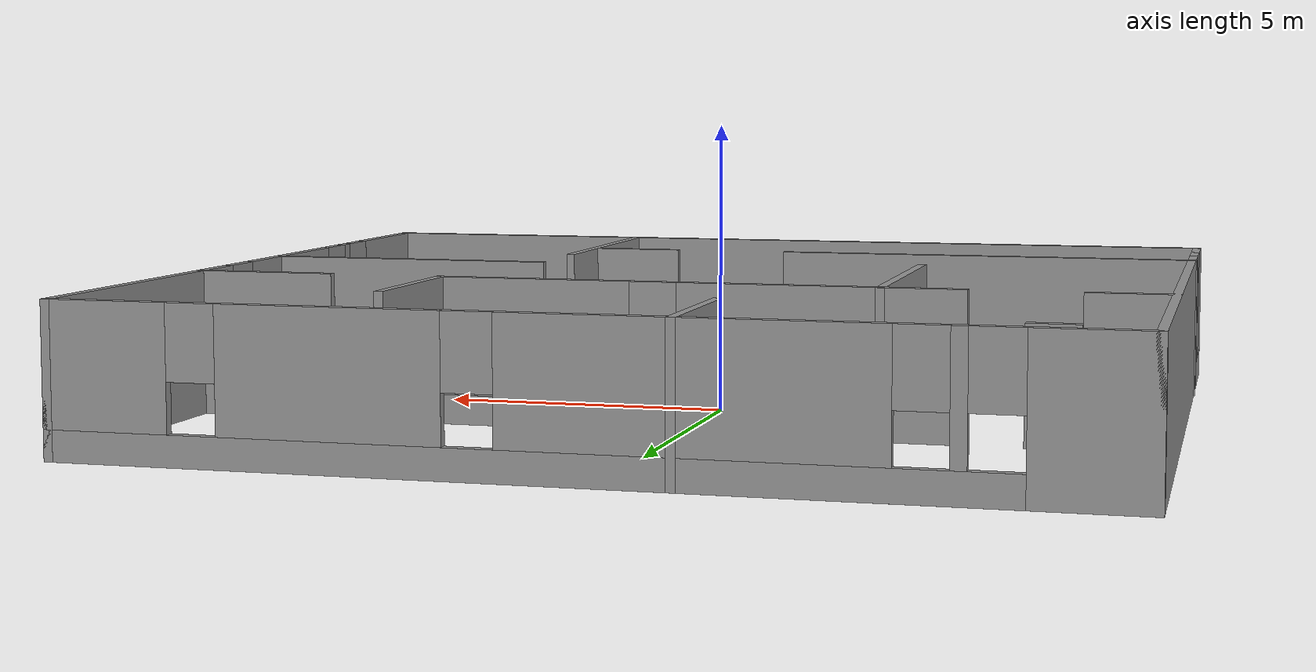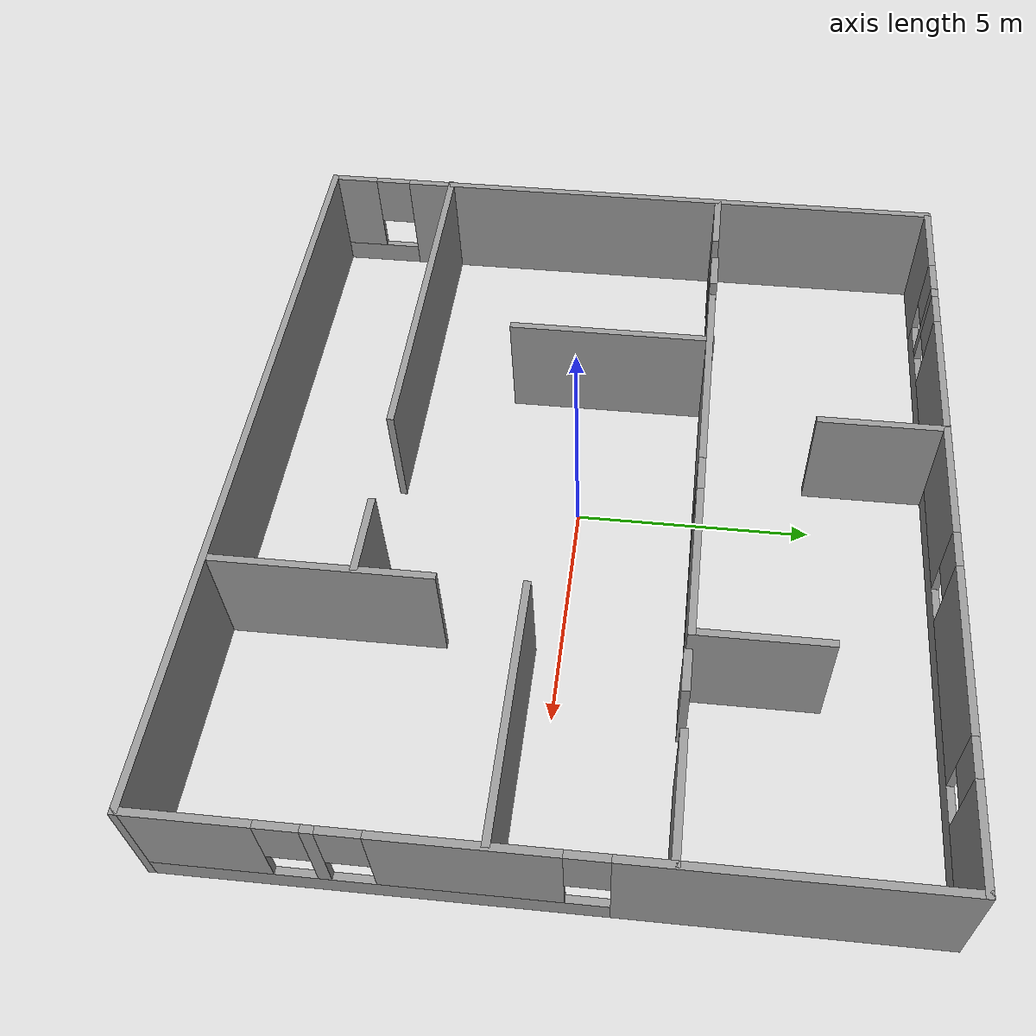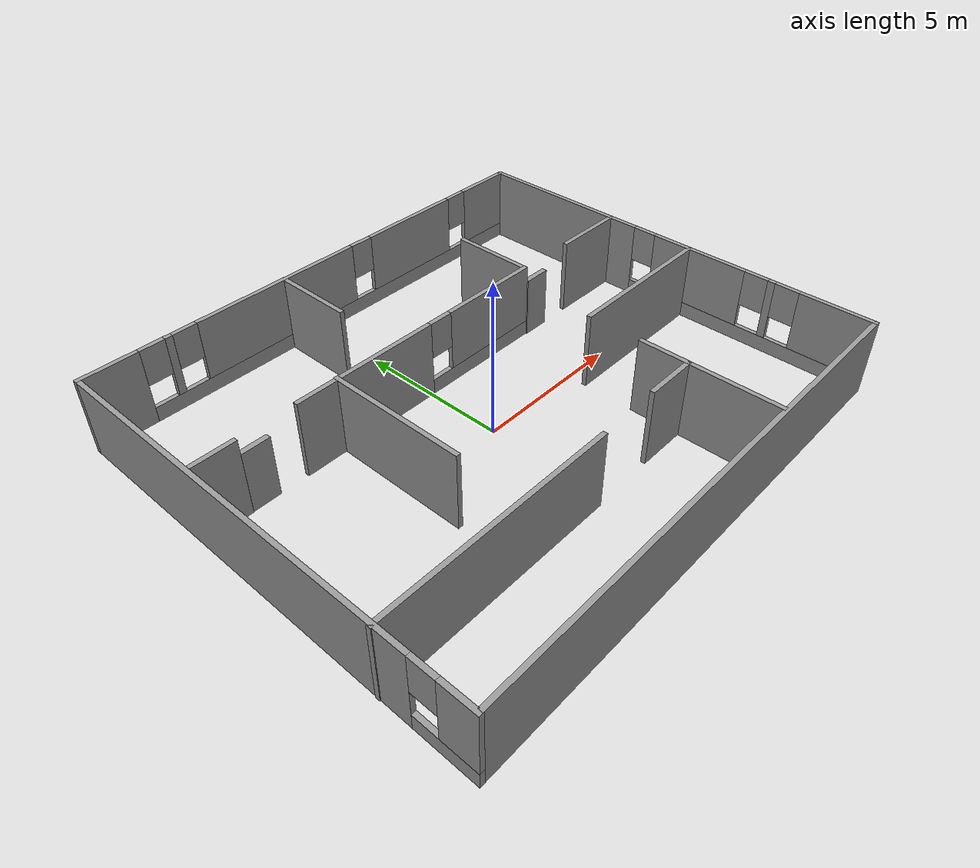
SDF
<?xml version='1.0'?>
<sdf version='1.7'>
  <model name='small_house'>
    <pose>0.377769 0.363565 0 0 -0 0</pose>
    <link name='Door_0'>
      <collision name='Door_0_Collision'>
        <geometry>
          <box>
            <size>0.9 0.17 2</size>
          </box>
        </geometry>
        <pose>0 0 1 0 -0 0</pose>
      </collision>
      <visual name='Door_0_Visual'>
        <pose>0 0 1 0 -0 0</pose>
        <geometry>
          <box>
            <size>0.9 0.17 2</size>
          </box>
        </geometry>
        <material>
          <script>
            <uri>file://media/materials/scripts/gazebo.material</uri>
            <name>Gazebo/Grey</name>
          </script>
        </material>
      </visual>
      <pose>-6.40719 2.21895 0 0 -0 0</pose>
    </link>
    <link name='Door_1'>
      <collision name='Door_1_Collision'>
        <geometry>
          <box>
            <size>0.9 0.17 2</size>
          </box>
        </geometry>
        <pose>0 0 1 0 -0 0</pose>
      </collision>
      <visual name='Door_1_Visual'>
        <pose>0 0 1 0 -0 0</pose>
        <geometry>
          <box>
            <size>0.9 0.17 2</size>
          </box>
        </geometry>
        <material>
          <script>
            <uri>file://media/materials/scripts/gazebo.material</uri>
            <name>Gazebo/Grey</name>
          </script>
        </material>
      </visual>
      <pose>4.39281 2.16678 0 0 -0 0</pose>
    </link>
    <link name='Wall_0'>
      <pose>-8.28847 -0.000474 0 0 -0 -1.5708</pose>
      <visual name='Wall_0_Visual_0'>
        <pose>-0.956453 0 1.25 0 -0 0</pose>
        <geometry>
          <box>
            <size>12.5871 0.15 2.5</size>
          </box>
        </geometry>
        <material>
          <script>
            <uri>file://media/materials/scripts/gazebo.material</uri>
            <name>Gazebo/Grey</name>
          </script>
          <ambient>1 1 1 1</ambient>
        </material>
        <meta>
          <layer>0</layer>
        </meta>
      </visual>
      <collision name='Wall_0_Collision_0'>
        <geometry>
          <box>
            <size>12.5871 0.15 2.5</size>
          </box>
        </geometry>
        <pose>-0.956453 0 1.25 0 -0 0</pose>
      </collision>
      <visual name='Wall_0_Visual_1'>
        <pose>6.29355 0 0.25 0 -0 0</pose>
        <geometry>
          <box>
            <size>1.91291 0.15 0.5</size>
          </box>
        </geometry>
        <material>
          <script>
            <uri>file://media/materials/scripts/gazebo.material</uri>
            <name>Gazebo/Grey</name>
          </script>
          <ambient>1 1 1 1</ambient>
        </material>
        <meta>
          <layer>0</layer>
        </meta>
      </visual>
      <collision name='Wall_0_Collision_1'>
        <geometry>
          <box>
            <size>1.91291 0.15 0.5</size>
          </box>
        </geometry>
        <pose>6.29355 0 0.25 0 -0 0</pose>
      </collision>
      <visual name='Wall_0_Visual_2'>
        <pose>6.69355 0 1.5 0 -0 0</pose>
        <geometry>
          <box>
            <size>1.11291 0.15 2</size>
          </box>
        </geometry>
        <material>
          <script>
            <uri>file://media/materials/scripts/gazebo.material</uri>
            <name>Gazebo/Grey</name>
          </script>
          <ambient>1 1 1 1</ambient>
        </material>
        <meta>
          <layer>0</layer>
        </meta>
      </visual>
      <collision name='Wall_0_Collision_2'>
        <geometry>
          <box>
            <size>1.11291 0.15 2</size>
          </box>
        </geometry>
        <pose>6.69355 0 1.5 0 -0 0</pose>
      </collision>
      <visual name='Wall_0_Visual_3'>
        <pose>5.73709 0 1.9 0 -0 0</pose>
        <geometry>
          <box>
            <size>0.8 0.15 1.2</size>
          </box>
        </geometry>
        <material>
          <script>
            <uri>file://media/materials/scripts/gazebo.material</uri>
            <name>Gazebo/Grey</name>
          </script>
          <ambient>1 1 1 1</ambient>
        </material>
        <meta>
          <layer>0</layer>
        </meta>
      </visual>
      <collision name='Wall_0_Collision_3'>
        <geometry>
          <box>
            <size>0.8 0.15 1.2</size>
          </box>
        </geometry>
        <pose>5.73709 0 1.9 0 -0 0</pose>
      </collision>
    </link>
    <link name='Wall_11'>
      <pose>-0.547404 2.19287 0 0 -0 0</pose>
      <visual name='Wall_11_Visual_0'>
        <pose>-2.10598 0 1.25 0 -0 0</pose>
        <geometry>
          <box>
            <size>4.78804 0.15 2.5</size>
          </box>
        </geometry>
        <material>
          <script>
            <uri>file://media/materials/scripts/gazebo.material</uri>
            <name>Gazebo/Grey</name>
          </script>
          <ambient>1 1 1 1</ambient>
        </material>
        <meta>
          <layer>0</layer>
        </meta>
      </visual>
      <collision name='Wall_11_Collision_0'>
        <geometry>
          <box>
            <size>4.78804 0.15 2.5</size>
          </box>
        </geometry>
        <pose>-2.10598 0 1.25 0 -0 0</pose>
      </collision>
      <visual name='Wall_11_Visual_1'>
        <pose>2.39402 0 0.25 0 -0 0</pose>
        <geometry>
          <box>
            <size>4.21196 0.15 0.5</size>
          </box>
        </geometry>
        <material>
          <script>
            <uri>file://media/materials/scripts/gazebo.material</uri>
            <name>Gazebo/Grey</name>
          </script>
          <ambient>1 1 1 1</ambient>
        </material>
        <meta>
          <layer>0</layer>
        </meta>
      </visual>
      <collision name='Wall_11_Collision_1'>
        <geometry>
          <box>
            <size>4.21196 0.15 0.5</size>
          </box>
        </geometry>
        <pose>2.39402 0 0.25 0 -0 0</pose>
      </collision>
      <visual name='Wall_11_Visual_2'>
        <pose>2.79402 0 1.5 0 -0 0</pose>
        <geometry>
          <box>
            <size>3.41196 0.15 2</size>
          </box>
        </geometry>
        <material>
          <script>
            <uri>file://media/materials/scripts/gazebo.material</uri>
            <name>Gazebo/Grey</name>
          </script>
          <ambient>1 1 1 1</ambient>
        </material>
        <meta>
          <layer>0</layer>
        </meta>
      </visual>
      <collision name='Wall_11_Collision_2'>
        <geometry>
          <box>
            <size>3.41196 0.15 2</size>
          </box>
        </geometry>
        <pose>2.79402 0 1.5 0 -0 0</pose>
      </collision>
      <visual name='Wall_11_Visual_3'>
        <pose>0.688043 0 1.9 0 -0 0</pose>
        <geometry>
          <box>
            <size>0.8 0.15 1.2</size>
          </box>
        </geometry>
        <material>
          <script>
            <uri>file://media/materials/scripts/gazebo.material</uri>
            <name>Gazebo/Grey</name>
          </script>
          <ambient>1 1 1 1</ambient>
        </material>
        <meta>
          <layer>0</layer>
        </meta>
      </visual>
      <collision name='Wall_11_Collision_3'>
        <geometry>
          <box>
            <size>0.8 0.15 1.2</size>
          </box>
        </geometry>
        <pose>0.688043 0 1.9 0 -0 0</pose>
      </collision>
    </link>
    <link name='Wall_12'>
      <collision name='Wall_12_Collision'>
        <geometry>
          <box>
            <size>2.75 0.15 2.5</size>
          </box>
        </geometry>
        <pose>0 0 1.25 0 -0 0</pose>
      </collision>
      <visual name='Wall_12_Visual'>
        <pose>0 0 1.25 0 -0 0</pose>
        <geometry>
          <box>
            <size>2.75 0.15 2.5</size>
          </box>
        </geometry>
        <material>
          <script>
            <uri>file://media/materials/scripts/gazebo.material</uri>
            <name>Gazebo/Grey</name>
          </script>
          <ambient>1 1 1 1</ambient>
        </material>
        <meta>
          <layer>0</layer>
        </meta>
      </visual>
      <pose>3.8776 3.49287 0 0 -0 1.5708</pose>
    </link>
    <link name='Wall_15'>
      <collision name='Wall_15_Collision'>
        <geometry>
          <box>
            <size>2.75 0.15 2.5</size>
          </box>
        </geometry>
        <pose>0 0 1.25 0 -0 0</pose>
      </collision>
      <visual name='Wall_15_Visual'>
        <pose>0 0 1.25 0 -0 0</pose>
        <geometry>
          <box>
            <size>2.75 0.15 2.5</size>
          </box>
        </geometry>
        <material>
          <script>
            <uri>file://media/materials/scripts/gazebo.material</uri>
            <name>Gazebo/Grey</name>
          </script>
          <ambient>1 1 1 1</ambient>
        </material>
        <meta>
          <layer>0</layer>
        </meta>
      </visual>
      <pose>-1.52893 5.87547 0 0 -0 -1.5708</pose>
    </link>
    <link name='Wall_17'>
      <collision name='Wall_17_Collision'>
        <geometry>
          <box>
            <size>2.5 0.15 2.5</size>
          </box>
        </geometry>
        <pose>0 0 1.25 0 -0 0</pose>
      </collision>
      <visual name='Wall_17_Visual'>
        <pose>0 0 1.25 0 -0 0</pose>
        <geometry>
          <box>
            <size>2.5 0.15 2.5</size>
          </box>
        </geometry>
        <material>
          <script>
            <uri>file://media/materials/scripts/gazebo.material</uri>
            <name>Gazebo/Grey</name>
          </script>
          <ambient>1 1 1 1</ambient>
        </material>
        <meta>
          <layer>0</layer>
        </meta>
      </visual>
      <pose>7.10477 2.16678 0 0 -0 3.14159</pose>
    </link>
    <link name='Wall_19'>
      <collision name='Wall_19_Collision'>
        <geometry>
          <box>
            <size>4.5 0.15 2.5</size>
          </box>
        </geometry>
        <pose>0 0 1.25 0 -0 0</pose>
      </collision>
      <visual name='Wall_19_Visual'>
        <pose>0 0 1.25 0 -0 0</pose>
        <geometry>
          <box>
            <size>4.5 0.15 2.5</size>
          </box>
        </geometry>
        <material>
          <script>
            <uri>file://media/materials/scripts/gazebo.material</uri>
            <name>Gazebo/Grey</name>
          </script>
          <ambient>1 1 1 1</ambient>
        </material>
        <meta>
          <layer>0</layer>
        </meta>
      </visual>
      <pose>-3.64197 0.043953 0 0 -0 -1.5708</pose>
    </link>
    <link name='Wall_21'>
      <collision name='Wall_21_Collision'>
        <geometry>
          <box>
            <size>7.75 0.15 2.5</size>
          </box>
        </geometry>
        <pose>0 0 1.25 0 -0 0</pose>
      </collision>
      <visual name='Wall_21_Visual'>
        <pose>0 0 1.25 0 -0 0</pose>
        <geometry>
          <box>
            <size>7.75 0.15 2.5</size>
          </box>
        </geometry>
        <material>
          <script>
            <uri>file://media/materials/scripts/gazebo.material</uri>
            <name>Gazebo/Grey</name>
          </script>
          <ambient>1 1 1 1</ambient>
        </material>
        <meta>
          <layer>0</layer>
        </meta>
      </visual>
      <pose>-4.51154 -4.30279 0 0 -0 0</pose>
    </link>
    <link name='Wall_23'>
      <collision name='Wall_23_Collision'>
        <geometry>
          <box>
            <size>5.25 0.15 2.5</size>
          </box>
        </geometry>
        <pose>0 0 1.25 0 -0 0</pose>
      </collision>
      <visual name='Wall_23_Visual'>
        <pose>0 0 1.25 0 -0 0</pose>
        <geometry>
          <box>
            <size>5.25 0.15 2.5</size>
          </box>
        </geometry>
        <material>
          <script>
            <uri>file://media/materials/scripts/gazebo.material</uri>
            <name>Gazebo/Grey</name>
          </script>
          <ambient>1 1 1 1</ambient>
        </material>
        <meta>
          <layer>0</layer>
        </meta>
      </visual>
      <pose>5.70368 -0.937568 0 0 -0 3.14159</pose>
    </link>
    <link name='Wall_25'>
      <collision name='Wall_25_Collision'>
        <geometry>
          <box>
            <size>4.5 0.15 2.5</size>
          </box>
        </geometry>
        <pose>0 0 1.25 0 -0 0</pose>
      </collision>
      <visual name='Wall_25_Visual'>
        <pose>0 0 1.25 0 -0 0</pose>
        <geometry>
          <box>
            <size>4.5 0.15 2.5</size>
          </box>
        </geometry>
        <material>
          <script>
            <uri>file://media/materials/scripts/gazebo.material</uri>
            <name>Gazebo/Grey</name>
          </script>
          <ambient>1 1 1 1</ambient>
        </material>
        <meta>
          <layer>0</layer>
        </meta>
      </visual>
      <pose>3.14064 -4.91909 0 0 -0 1.5708</pose>
    </link>
    <link name='Wall_28'>
      <collision name='Wall_28_Collision'>
        <geometry>
          <box>
            <size>1.75 0.15 2.5</size>
          </box>
        </geometry>
        <pose>0 0 1.25 0 -0 0</pose>
      </collision>
      <visual name='Wall_28_Visual'>
        <pose>0 0 1.25 0 -0 0</pose>
        <geometry>
          <box>
            <size>1.75 0.15 2.5</size>
          </box>
        </geometry>
        <material>
          <script>
            <uri>file://media/materials/scripts/gazebo.material</uri>
            <name>Gazebo/Grey</name>
          </script>
          <ambient>1 1 1 1</ambient>
        </material>
        <meta>
          <layer>0</layer>
        </meta>
      </visual>
      <pose>2.31455 -4.25061 0 0 -0 3.14159</pose>
    </link>
    <link name='Wall_3'>
      <pose>0.011534 7.17453 0 0 -0 0</pose>
      <visual name='Wall_3_Visual_0'>
        <pose>-7.45338 0 1.25 0 -0 0</pose>
        <geometry>
          <box>
            <size>1.84324 0.15 2.5</size>
          </box>
        </geometry>
        <material>
          <script>
            <uri>file://media/materials/scripts/gazebo.material</uri>
            <name>Gazebo/Grey</name>
          </script>
          <ambient>1 1 1 1</ambient>
        </material>
        <meta>
          <layer>0</layer>
        </meta>
      </visual>
      <collision name='Wall_3_Collision_0'>
        <geometry>
          <box>
            <size>1.84324 0.15 2.5</size>
          </box>
        </geometry>
        <pose>-7.45338 0 1.25 0 -0 0</pose>
      </collision>
      <visual name='Wall_3_Visual_1'>
        <pose>0.921618 0 0.25 0 -0 0</pose>
        <geometry>
          <box>
            <size>14.9068 0.15 0.5</size>
          </box>
        </geometry>
        <material>
          <script>
            <uri>file://media/materials/scripts/gazebo.material</uri>
            <name>Gazebo/Grey</name>
          </script>
          <ambient>1 1 1 1</ambient>
        </material>
        <meta>
          <layer>0</layer>
        </meta>
      </visual>
      <collision name='Wall_3_Collision_1'>
        <geometry>
          <box>
            <size>14.9068 0.15 0.5</size>
          </box>
        </geometry>
        <pose>0.921618 0 0.25 0 -0 0</pose>
      </collision>
      <visual name='Wall_3_Visual_2'>
        <pose>-5.61003 0 1.5 0 -0 0</pose>
        <geometry>
          <box>
            <size>0.243478 0.15 2</size>
          </box>
        </geometry>
        <material>
          <script>
            <uri>file://media/materials/scripts/gazebo.material</uri>
            <name>Gazebo/Grey</name>
          </script>
          <ambient>1 1 1 1</ambient>
        </material>
        <meta>
          <layer>0</layer>
        </meta>
      </visual>
      <collision name='Wall_3_Collision_2'>
        <geometry>
          <box>
            <size>0.243478 0.15 2</size>
          </box>
        </geometry>
        <pose>-5.61003 0 1.5 0 -0 0</pose>
      </collision>
      <visual name='Wall_3_Visual_3'>
        <pose>-1.78829 0 1.5 0 -0 0</pose>
        <geometry>
          <box>
            <size>5.8 0.15 2</size>
          </box>
        </geometry>
        <material>
          <script>
            <uri>file://media/materials/scripts/gazebo.material</uri>
            <name>Gazebo/Grey</name>
          </script>
          <ambient>1 1 1 1</ambient>
        </material>
        <meta>
          <layer>0</layer>
        </meta>
      </visual>
      <collision name='Wall_3_Collision_3'>
        <geometry>
          <box>
            <size>5.8 0.15 2</size>
          </box>
        </geometry>
        <pose>-1.78829 0 1.5 0 -0 0</pose>
      </collision>
      <visual name='Wall_3_Visual_4'>
        <pose>3.70302 0 1.5 0 -0 0</pose>
        <geometry>
          <box>
            <size>3.58261 0.15 2</size>
          </box>
        </geometry>
        <material>
          <script>
            <uri>file://media/materials/scripts/gazebo.material</uri>
            <name>Gazebo/Grey</name>
          </script>
          <ambient>1 1 1 1</ambient>
        </material>
        <meta>
          <layer>0</layer>
        </meta>
      </visual>
      <collision name='Wall_3_Collision_4'>
        <geometry>
          <box>
            <size>3.58261 0.15 2</size>
          </box>
        </geometry>
        <pose>3.70302 0 1.5 0 -0 0</pose>
      </collision>
      <visual name='Wall_3_Visual_5'>
        <pose>7.33466 0 1.5 0 -0 0</pose>
        <geometry>
          <box>
            <size>2.08068 0.15 2</size>
          </box>
        </geometry>
        <material>
          <script>
            <uri>file://media/materials/scripts/gazebo.material</uri>
            <name>Gazebo/Grey</name>
          </script>
          <ambient>1 1 1 1</ambient>
        </material>
        <meta>
          <layer>0</layer>
        </meta>
      </visual>
      <collision name='Wall_3_Collision_5'>
        <geometry>
          <box>
            <size>2.08068 0.15 2</size>
          </box>
        </geometry>
        <pose>7.33466 0 1.5 0 -0 0</pose>
      </collision>
      <visual name='Wall_3_Visual_6'>
        <pose>-6.13176 0 1.9 0 -0 0</pose>
        <geometry>
          <box>
            <size>0.8 0.15 1.2</size>
          </box>
        </geometry>
        <material>
          <script>
            <uri>file://media/materials/scripts/gazebo.material</uri>
            <name>Gazebo/Grey</name>
          </script>
          <ambient>1 1 1 1</ambient>
        </material>
        <meta>
          <layer>0</layer>
        </meta>
      </visual>
      <collision name='Wall_3_Collision_6'>
        <geometry>
          <box>
            <size>0.8 0.15 1.2</size>
          </box>
        </geometry>
        <pose>-6.13176 0 1.9 0 -0 0</pose>
      </collision>
      <visual name='Wall_3_Visual_7'>
        <pose>-5.08829 0 1.9 0 -0 0</pose>
        <geometry>
          <box>
            <size>0.8 0.15 1.2</size>
          </box>
        </geometry>
        <material>
          <script>
            <uri>file://media/materials/scripts/gazebo.material</uri>
            <name>Gazebo/Grey</name>
          </script>
          <ambient>1 1 1 1</ambient>
        </material>
        <meta>
          <layer>0</layer>
        </meta>
      </visual>
      <collision name='Wall_3_Collision_7'>
        <geometry>
          <box>
            <size>0.8 0.15 1.2</size>
          </box>
        </geometry>
        <pose>-5.08829 0 1.9 0 -0 0</pose>
      </collision>
      <visual name='Wall_3_Visual_8'>
        <pose>1.51171 0 1.9 0 -0 0</pose>
        <geometry>
          <box>
            <size>0.8 0.15 1.2</size>
          </box>
        </geometry>
        <material>
          <script>
            <uri>file://media/materials/scripts/gazebo.material</uri>
            <name>Gazebo/Grey</name>
          </script>
          <ambient>1 1 1 1</ambient>
        </material>
        <meta>
          <layer>0</layer>
        </meta>
      </visual>
      <collision name='Wall_3_Collision_8'>
        <geometry>
          <box>
            <size>0.8 0.15 1.2</size>
          </box>
        </geometry>
        <pose>1.51171 0 1.9 0 -0 0</pose>
      </collision>
      <visual name='Wall_3_Visual_9'>
        <pose>5.89432 0 1.9 0 -0 0</pose>
        <geometry>
          <box>
            <size>0.8 0.15 1.2</size>
          </box>
        </geometry>
        <material>
          <script>
            <uri>file://media/materials/scripts/gazebo.material</uri>
            <name>Gazebo/Grey</name>
          </script>
          <ambient>1 1 1 1</ambient>
        </material>
        <meta>
          <layer>0</layer>
        </meta>
      </visual>
      <collision name='Wall_3_Collision_9'>
        <geometry>
          <box>
            <size>0.8 0.15 1.2</size>
          </box>
        </geometry>
        <pose>5.89432 0 1.9 0 -0 0</pose>
      </collision>
    </link>
    <link name='Wall_5'>
      <pose>8.31153 -0.000474 0 0 -0 -1.5708</pose>
      <visual name='Wall_5_Visual_0'>
        <pose>-4.19124 0 1.25 0 -0 0</pose>
        <geometry>
          <box>
            <size>6.11753 0.15 2.5</size>
          </box>
        </geometry>
        <material>
          <script>
            <uri>file://media/materials/scripts/gazebo.material</uri>
            <name>Gazebo/Grey</name>
          </script>
          <ambient>1 1 1 1</ambient>
        </material>
        <meta>
          <layer>0</layer>
        </meta>
      </visual>
      <collision name='Wall_5_Collision_0'>
        <geometry>
          <box>
            <size>6.11753 0.15 2.5</size>
          </box>
        </geometry>
        <pose>-4.19124 0 1.25 0 -0 0</pose>
      </collision>
      <visual name='Wall_5_Visual_1'>
        <pose>3.05876 0 0.25 0 -0 0</pose>
        <geometry>
          <box>
            <size>8.38247 0.15 0.5</size>
          </box>
        </geometry>
        <material>
          <script>
            <uri>file://media/materials/scripts/gazebo.material</uri>
            <name>Gazebo/Grey</name>
          </script>
          <ambient>1 1 1 1</ambient>
        </material>
        <meta>
          <layer>0</layer>
        </meta>
      </visual>
      <collision name='Wall_5_Collision_1'>
        <geometry>
          <box>
            <size>8.38247 0.15 0.5</size>
          </box>
        </geometry>
        <pose>3.05876 0 0.25 0 -0 0</pose>
      </collision>
      <visual name='Wall_5_Visual_2'>
        <pose>1.3284 0 1.5 0 -0 0</pose>
        <geometry>
          <box>
            <size>3.32174 0.15 2</size>
          </box>
        </geometry>
        <material>
          <script>
            <uri>file://media/materials/scripts/gazebo.material</uri>
            <name>Gazebo/Grey</name>
          </script>
          <ambient>1 1 1 1</ambient>
        </material>
        <meta>
          <layer>0</layer>
        </meta>
      </visual>
      <collision name='Wall_5_Collision_2'>
        <geometry>
          <box>
            <size>3.32174 0.15 2</size>
          </box>
        </geometry>
        <pose>1.3284 0 1.5 0 -0 0</pose>
      </collision>
      <visual name='Wall_5_Visual_3'>
        <pose>3.91101 0 1.5 0 -0 0</pose>
        <geometry>
          <box>
            <size>0.243478 0.15 2</size>
          </box>
        </geometry>
        <material>
          <script>
            <uri>file://media/materials/scripts/gazebo.material</uri>
            <name>Gazebo/Grey</name>
          </script>
          <ambient>1 1 1 1</ambient>
        </material>
        <meta>
          <layer>0</layer>
        </meta>
      </visual>
      <collision name='Wall_5_Collision_3'>
        <geometry>
          <box>
            <size>0.243478 0.15 2</size>
          </box>
        </geometry>
        <pose>3.91101 0 1.5 0 -0 0</pose>
      </collision>
      <visual name='Wall_5_Visual_4'>
        <pose>6.04137 0 1.5 0 -0 0</pose>
        <geometry>
          <box>
            <size>2.41725 0.15 2</size>
          </box>
        </geometry>
        <material>
          <script>
            <uri>file://media/materials/scripts/gazebo.material</uri>
            <name>Gazebo/Grey</name>
          </script>
          <ambient>1 1 1 1</ambient>
        </material>
        <meta>
          <layer>0</layer>
        </meta>
      </visual>
      <collision name='Wall_5_Collision_4'>
        <geometry>
          <box>
            <size>2.41725 0.15 2</size>
          </box>
        </geometry>
        <pose>6.04137 0 1.5 0 -0 0</pose>
      </collision>
      <visual name='Wall_5_Visual_5'>
        <pose>-0.732471 0 1.9 0 -0 0</pose>
        <geometry>
          <box>
            <size>0.8 0.15 1.2</size>
          </box>
        </geometry>
        <material>
          <script>
            <uri>file://media/materials/scripts/gazebo.material</uri>
            <name>Gazebo/Grey</name>
          </script>
          <ambient>1 1 1 1</ambient>
        </material>
        <meta>
          <layer>0</layer>
        </meta>
      </visual>
      <collision name='Wall_5_Collision_5'>
        <geometry>
          <box>
            <size>0.8 0.15 1.2</size>
          </box>
        </geometry>
        <pose>-0.732471 0 1.9 0 -0 0</pose>
      </collision>
      <visual name='Wall_5_Visual_6'>
        <pose>3.38927 0 1.9 0 -0 0</pose>
        <geometry>
          <box>
            <size>0.8 0.15 1.2</size>
          </box>
        </geometry>
        <material>
          <script>
            <uri>file://media/materials/scripts/gazebo.material</uri>
            <name>Gazebo/Grey</name>
          </script>
          <ambient>1 1 1 1</ambient>
        </material>
        <meta>
          <layer>0</layer>
        </meta>
      </visual>
      <collision name='Wall_5_Collision_6'>
        <geometry>
          <box>
            <size>0.8 0.15 1.2</size>
          </box>
        </geometry>
        <pose>3.38927 0 1.9 0 -0 0</pose>
      </collision>
      <visual name='Wall_5_Visual_7'>
        <pose>4.43275 0 1.9 0 -0 0</pose>
        <geometry>
          <box>
            <size>0.8 0.15 1.2</size>
          </box>
        </geometry>
        <material>
          <script>
            <uri>file://media/materials/scripts/gazebo.material</uri>
            <name>Gazebo/Grey</name>
          </script>
          <ambient>1 1 1 1</ambient>
        </material>
        <meta>
          <layer>0</layer>
        </meta>
      </visual>
      <collision name='Wall_5_Collision_7'>
        <geometry>
          <box>
            <size>0.8 0.15 1.2</size>
          </box>
        </geometry>
        <pose>4.43275 0 1.9 0 -0 0</pose>
      </collision>
    </link>
    <link name='Wall_6'>
      <collision name='Wall_6_Collision'>
        <geometry>
          <box>
            <size>16.75 0.15 2.5</size>
          </box>
        </geometry>
        <pose>0 0 1.25 0 -0 0</pose>
      </collision>
      <visual name='Wall_6_Visual'>
        <pose>0 0 1.25 0 -0 0</pose>
        <geometry>
          <box>
            <size>16.75 0.15 2.5</size>
          </box>
        </geometry>
        <material>
          <script>
            <uri>file://media/materials/scripts/gazebo.material</uri>
            <name>Gazebo/Grey</name>
          </script>
          <ambient>1 1 1 1</ambient>
        </material>
        <meta>
          <layer>0</layer>
        </meta>
      </visual>
      <pose>0.011534 -7.17547 0 0 -0 3.14159</pose>
    </link>
    <link name='Wall_9'>
      <collision name='Wall_9_Collision'>
        <geometry>
          <box>
            <size>1.5 0.15 2.5</size>
          </box>
        </geometry>
        <pose>0 0 1.25 0 -0 0</pose>
      </collision>
      <visual name='Wall_9_Visual'>
        <pose>0 0 1.25 0 -0 0</pose>
        <geometry>
          <box>
            <size>1.5 0.15 2.5</size>
          </box>
        </geometry>
        <material>
          <script>
            <uri>file://media/materials/scripts/gazebo.material</uri>
            <name>Gazebo/Grey</name>
          </script>
          <ambient>1 1 1 1</ambient>
        </material>
        <meta>
          <layer>0</layer>
        </meta>
      </visual>
      <pose>-7.61045 2.19287 0 0 -0 0</pose>
    </link>
    <static>1</static>
  </model>
</sdf>
